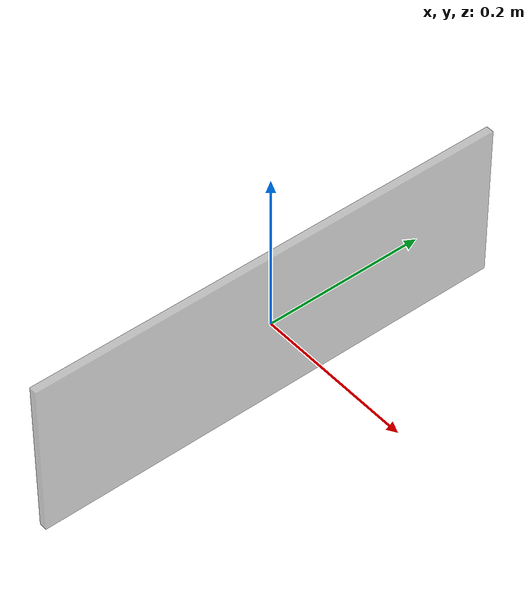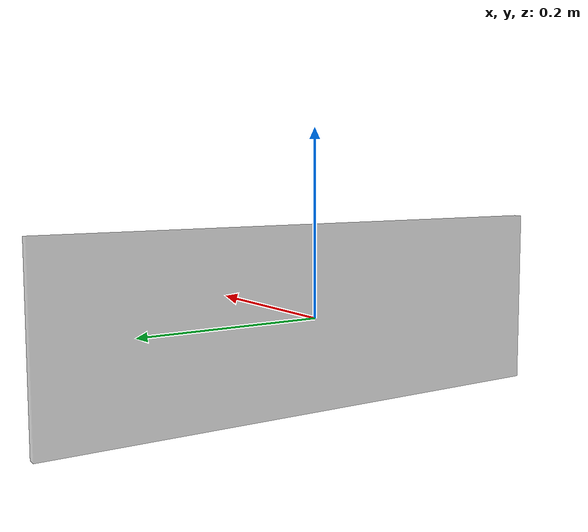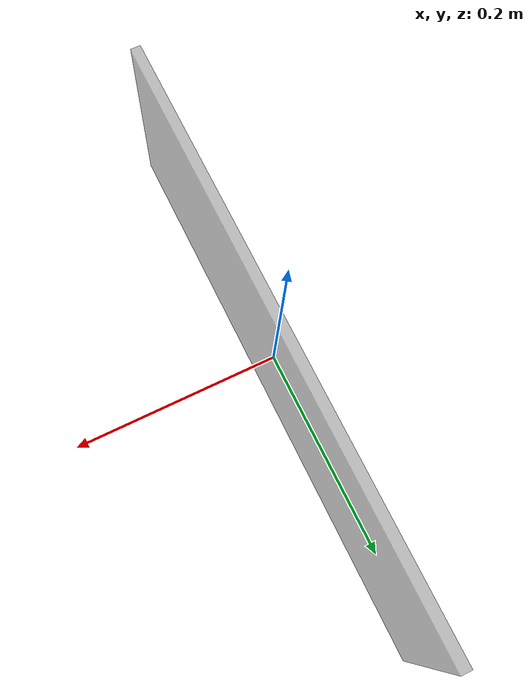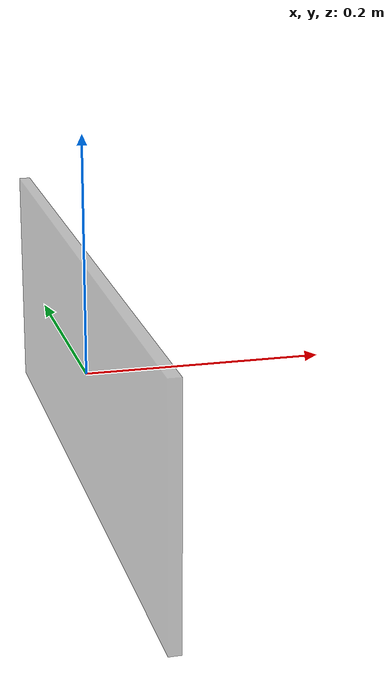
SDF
<?xml version='1.0'?>
<sdf version='1.7'>
  <model name='boundaryW'>
    <link name='link'>
      <pose>0 0 0 0 -0 0</pose>
      <self_collide>0</self_collide>
      <inertial>
        <pose>0 0 0 0 -0 0</pose>
        <inertia>
          <ixx>1</ixx>
          <ixy>0</ixy>
          <ixz>0</ixz>
          <iyy>1</iyy>
          <iyz>0</iyz>
          <izz>1</izz>
        </inertia>
        <mass>1</mass>
      </inertial>
      <enable_wind>0</enable_wind>
      <kinematic>0</kinematic>
      <visual name='visual'>
        <geometry>
          <box>
            <size>0.01 0.6 0.2</size>
          </box>
        </geometry>
        <material>
          <ambient>1 1 1 0.1</ambient>
          <diffuse>0.5 0.5 0.5 0.5</diffuse>
          <specular>0.5 0.5 0.5 0.5</specular>
          <emissive>0.5 0.5 0.5 0.5</emissive>
          <shader type='pixel'/>
          <script>
            <name>ModelPreview_4::link::visual_MATERIAL_</name>
            <uri>__default__</uri>
          </script>
        </material>
        <pose>0 0 0 0 -0 0</pose>
        <transparency>0.5</transparency>
        <cast_shadows>1</cast_shadows>
      </visual>
      <collision name='collision'>
        <laser_retro>0</laser_retro>
        <max_contacts>10</max_contacts>
        <pose>0 0 0 0 -0 0</pose>
        <geometry>
          <box>
            <size>0.01 0.6 0.2</size>
          </box>
        </geometry>
        <surface>
          <friction>
            <ode>
              <mu>1</mu>
              <mu2>1</mu2>
              <fdir1>0 0 0</fdir1>
              <slip1>0</slip1>
              <slip2>0</slip2>
            </ode>
            <torsional>
              <coefficient>1</coefficient>
              <patch_radius>0</patch_radius>
              <surface_radius>0</surface_radius>
              <use_patch_radius>1</use_patch_radius>
              <ode>
                <slip>0</slip>
              </ode>
            </torsional>
          </friction>
          <bounce>
            <restitution_coefficient>0</restitution_coefficient>
            <threshold>1e+06</threshold>
          </bounce>
          <contact>
            <collide_without_contact>0</collide_without_contact>
            <collide_without_contact_bitmask>1</collide_without_contact_bitmask>
            <collide_bitmask>1</collide_bitmask>
            <ode>
              <soft_cfm>0</soft_cfm>
              <soft_erp>0.2</soft_erp>
              <kp>1e+13</kp>
              <kd>1</kd>
              <max_vel>0.01</max_vel>
              <min_depth>0</min_depth>
            </ode>
            <bullet>
              <split_impulse>1</split_impulse>
              <split_impulse_penetration_threshold>-0.01</split_impulse_penetration_threshold>
              <soft_cfm>0</soft_cfm>
              <soft_erp>0.2</soft_erp>
              <kp>1e+13</kp>
              <kd>1</kd>
            </bullet>
          </contact>
        </surface>
      </collision>
    </link>
    <static>0</static>
    <allow_auto_disable>1</allow_auto_disable>
  </model>
</sdf>
